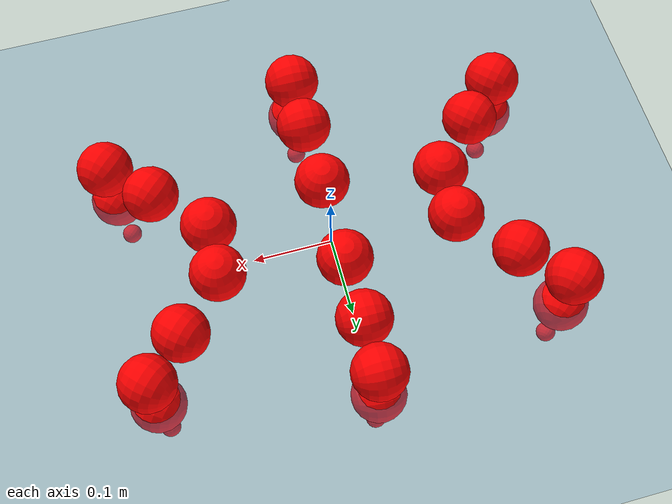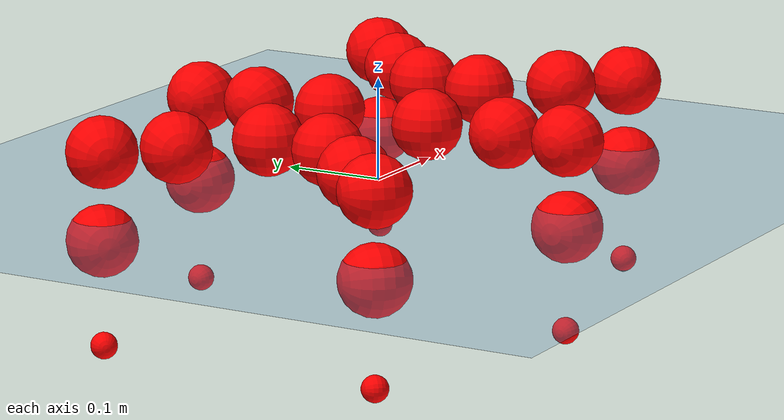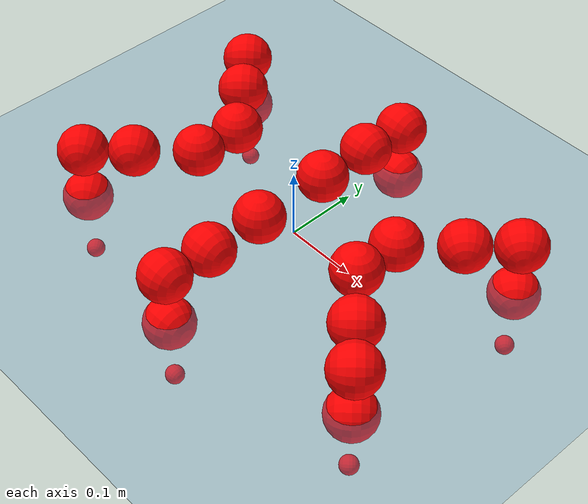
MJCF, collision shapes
<mujoco model="Golem">
  <compiler angle="radian" assetdir="assets" balanceinertia="true" inertiafromgeom="false"/>

  <option timestep="0.005" density="1.2" viscosity="2e-05"/>

  <size nkey="1"/>

  <visual>
    <quality shadowsize="8192"/>
    <map shadowclip="0.5"/>
  </visual>

  <default>
    <default class="/">
      <joint armature="0.01" damping="0.01" frictionloss="0.01"/>
      <geom contype="0" conaffinity="0" group="1" solref="-1000 -80"/>
      <site size="0.01 0.005 0.005" group="5"/>
      <general forcelimited="true" biastype="affine" gainprm="25" biasprm="0 -25 -0.5"/>
      <default class="visual">
        <geom type="mesh" group="2"/>
      </default>
      <default class="collision">
        <geom group="3"/>
      </default>
      <default class="foot">
        <geom size="0.01 0 0" condim="6" group="4" priority="1" solimp="0.015 1 0.01"/>
      </default>
      <default class="reward_collision_sphere">
        <geom group="5" rgba="1 0 0 1"/>
      </default>
    </default>
  </default>

  <asset>
    <texture type="skybox" colorspace="auto" name="//unnamed_texture_0" builtin="gradient" rgb1="0.95 0.95 0.95" rgb2="0.95 0.95 0.95" width="100" height="600"/>
    <texture type="2d" colorspace="auto" name="texplane" builtin="checker" rgb1="0.345 0.575 0.748" rgb2="0.345 0.575 0.748" markrgb="1 1 1" width="512" height="512"/>
    <material name="MatPlane" class="/" texture="texplane" texuniform="true" texrepeat="2 2" specular="0.9"/>
    <mesh name="body" class="/" file="body.stl" scale="0.001 0.001 0.001"/>
    <mesh name="coxa" class="/" file="coxa.stl" scale="0.001 0.001 0.001"/>
    <mesh name="femur" class="/" file="femur.stl" scale="0.001 0.001 0.001"/>
    <mesh name="tibia" class="/" file="tibia.stl" scale="0.001 0.001 0.001"/>
    <mesh name="tarsus" class="/" file="tarsus.stl" scale="0.001 0.001 0.001"/>
  </asset>

  <worldbody>
    <geom name="floor" class="/" size="100 100 0.125" type="plane" group="0" material="MatPlane"/>
    <light name="toplight_shadow" class="/" pos="0 0 5" dir="0.0990148 0.0990148 -0.990148" type="directional" ambient="0.04 0.04 0.04" diffuse="0.55 0.55 0.55" specular="0.12 0.12 0.12"/>
    <light name="toplight_fill" class="/" pos="0 0 5" dir="0.0990148 0.0990148 -0.990148" type="directional" castshadow="false" ambient="0.04 0.04 0.04" diffuse="0.3 0.3 0.3" specular="0.08 0.08 0.08"/>
    <body name="trunk" pos="-0.00121571 -0.000334514 0.000524906" quat="0.999999 -0.000295923 0.00106384 -0.000404972">
      <inertial pos="0.000923575 0.00227553 -0.000720273" quat="1 0.00012176 0.00015216 0.000418635" mass="2.31095" diaginertia="0.00733743 0.00106471 0.00951881"/>
      <joint name="//unnamed_joint_0" type="free"/>
      <geom name="//unnamed_geom_1" class="/" pos="0 0 0.0638338" quat="1 0 0 0" type="mesh" rgba="0.9 0.9 0.9 1" mesh="body"/>
      <site name="imu" class="/" pos="0.123886 0.00911301 0.100873" size="0.00861616"/>
      <camera name="track" class="/" pos="0 -1.28052 0" quat="0.707107 0.707107 0 0" mode="trackcom"/>
      <camera name="ego_camera" class="/" pos="0.123134 0 0.0997402" quat="-0.5 -0.5 0.5 0.5"/>
      <body name="coxa_RR" pos="-0.168753 -0.0518513 0.0638521" quat="0.382661 -0.000654443 -0.000821933 -0.923888">
        <inertial pos="0.00056478 -0.000477473 -0.000257671" quat="0.999921 -0.00502903 -0.00567746 0.0100373" mass="0.135456" diaginertia="0.00781048 0.00109231 0.0102719"/>
        <joint name="coxa_joint_RR" class="/" pos="0 0 0" axis="0.00277817 0.00121821 -0.999995" range="-3.13674 3.08854" armature="0.00968588" damping="0.00906366" frictionloss="0.00862207"/>
        <geom name="//unnamed_geom_2" class="/" type="mesh" rgba="0.2 0.2 0.2 1" mesh="coxa"/>
        <geom name="//unnamed_geom_3" class="reward_collision_sphere" size="0.0344646" pos="-0.0284155 0 0"/>
        <body name="femur_RR" pos="0.0568447 0.00235565 -0.00170387" quat="0.499819 -0.500315 0.49979 0.500076">
          <inertial pos="0.00221003 -0.0008036 0.00021303" quat="0.999944 -0.0072771 0.00735636 0.00227598" mass="0.12985" diaginertia="0.00767341 0.00108603 0.00990159"/>
          <joint name="femur_joint_RR" class="/" pos="0 0 0" axis="-0.00184452 0.000249082 -0.999998" stiffness="0.0018426" range="-3.13534 3.12803" armature="0.00873027" damping="0.00581699" frictionloss="0.00832037"/>
          <geom name="//unnamed_geom_4" class="/" type="mesh" rgba="0.9 0.9 0.9 1" mesh="femur"/>
          <geom name="//unnamed_geom_5" class="reward_collision_sphere" size="0.0344646"/>
          <body name="tibia_RR" pos="0.00107754 -0.0676234 0.000920464" quat="7.35822e-05 1 6.04395e-05 -7.77363e-05">
            <inertial pos="-0.00134411 0.000357433 0.000491393" quat="0.999995 -0.00165993 -0.00265379 0.000275771" mass="0.13155" diaginertia="0.00753081 0.00106577 0.0100197"/>
            <joint name="tibia_joint_RR" class="/" pos="0 0 0" axis="-9.81059e-05 0.0096356 0.999954" stiffness="0.000681932" range="-3.12416 3.13831" armature="0.00864148" damping="0.002317" frictionloss="0.00861032"/>
            <geom name="//unnamed_geom_6" class="/" type="mesh" rgba="0.2 0.2 0.2 1" mesh="tibia"/>
            <geom name="//unnamed_geom_7" class="reward_collision_sphere" size="0.0344646"/>
            <body name="tarsus_RR" pos="0.0820089 0.00210313 0.000145432" quat="1 2.5975e-06 2.4485e-05 -0.000143114">
              <inertial pos="0.0582931 0.000142098 0.000768244" quat="0.501341 0.500086 0.499333 0.499237" mass="0.131568" diaginertia="0.00789293 0.00109887 0.0102136"/>
              <joint name="tarsus_joint_RR" class="/" pos="0 0 0" axis="-0.00259318 0.00125623 0.999996" range="-3.13997 3.13856" armature="0.00861783" damping="0.0423487" frictionloss="0.00792877"/>
              <geom name="//unnamed_geom_8" class="/" type="mesh" rgba="0.9 0.9 0.9 1" mesh="tarsus"/>
              <geom name="foot_1" class="foot" size="0.00887927" pos="0.106085 0 0" quat="0 -0.707107 0 0.707107"/>
              <geom name="//unnamed_geom_10" class="reward_collision_sphere" size="0.0344646"/>
              <geom name="//unnamed_geom_11" class="reward_collision_sphere" size="0.0129242" pos="0.101822 0 0"/>
              <site name="foot_1" class="foot" pos="0.106085 0 0" quat="0 -0.707107 0 0.707107" size="0.00861616"/>
            </body>
          </body>
        </body>
      </body>
      <body name="coxa_RM" pos="-0.00256926 -0.0837064 0.0615377" quat="0.707278 -0.000479991 -3.32681e-05 -0.706935">
        <inertial pos="-0.00195838 0.000585401 0.00120446" quat="1 -1.73123e-05 -2.41426e-05 2.43183e-05" mass="0.131644" diaginertia="0.00787678 0.00110233 0.0101756"/>
        <joint name="coxa_joint_RM" class="/" pos="0 0 0" axis="0.00541584 -0.00109598 -0.999985" range="-3.10857 3.14179" armature="0.0091267" damping="0.0129152" frictionloss="0.00866072"/>
        <geom name="//unnamed_geom_12" class="/" type="mesh" rgba="0.2 0.2 0.2 1" mesh="coxa"/>
        <geom name="//unnamed_geom_13" class="reward_collision_sphere" size="0.0344646" pos="-0.0284155 0 0"/>
        <body name="femur_RM" pos="0.0548771 0.00188508 0.000903294" quat="0.5 -0.5 0.500002 0.499998">
          <inertial pos="0.00026976 -0.000394341 -0.000886865" quat="0.999925 0.00989235 0.000283503 -0.00722001" mass="0.123231" diaginertia="0.0074226 0.00104782 0.00966631"/>
          <joint name="femur_joint_RM" class="/" pos="0 0 0" axis="-0.000581998 -0.000626342 -1" range="-3.18963 3.15968" armature="0.0088394" damping="0.00844578" frictionloss="0.00863213"/>
          <geom name="//unnamed_geom_14" class="/" type="mesh" rgba="0.9 0.9 0.9 1" mesh="femur"/>
          <geom name="//unnamed_geom_15" class="reward_collision_sphere" size="0.0344646"/>
          <body name="tibia_RM" pos="-0.000757771 -0.0677108 -0.00171357" quat="-3.17799e-05 0.999999 0.00116991 -0.000278388">
            <inertial pos="-0.00115956 -0.000859167 0.00108408" quat="0.999975 -0.00358904 0.00606865 -0.000334252" mass="0.127123" diaginertia="0.00756149 0.00104252 0.00952014"/>
            <joint name="tibia_joint_RM" class="/" pos="0 0 0" axis="-0.000401183 -0.00221377 0.999997" range="-3.13744 3.14377" armature="0.00865342" damping="0" frictionloss="0.00904569"/>
            <geom name="//unnamed_geom_16" class="/" type="mesh" rgba="0.2 0.2 0.2 1" mesh="tibia"/>
            <geom name="//unnamed_geom_17" class="reward_collision_sphere" size="0.0344646"/>
            <body name="tarsus_RM" pos="0.0837228 0.000450991 -0.000810416" quat="0.999999 -0.000816562 0.000542824 -0.000361396">
              <inertial pos="0.0570916 0.00035867 0.000271491" quat="0.503119 0.497153 0.501467 0.498238" mass="0.126918" diaginertia="0.00763169 0.00106674 0.00983062"/>
              <joint name="tarsus_joint_RM" class="/" pos="0 0 0" axis="0.00331568 0.00903827 0.999954" range="-3.16025 3.18878" armature="0.00851779" damping="0.00705994" frictionloss="0.00754157"/>
              <geom name="//unnamed_geom_18" class="/" type="mesh" rgba="0.9 0.9 0.9 1" mesh="tarsus"/>
              <geom name="foot_2" class="foot" size="0.00826396" pos="0.106085 0 0" quat="0 -0.707107 0 0.707107"/>
              <geom name="//unnamed_geom_20" class="reward_collision_sphere" size="0.0344646"/>
              <geom name="//unnamed_geom_21" class="reward_collision_sphere" size="0.0129242" pos="0.101822 0 0"/>
              <site name="foot_2" class="foot" pos="0.106085 0 0" quat="0 -0.707107 0 0.707107" size="0.00861616"/>
            </body>
          </body>
        </body>
      </body>
      <body name="coxa_RF" pos="0.166327 -0.0514044 0.064349" quat="0.924157 0.000654171 7.56126e-05 -0.382011">
        <inertial pos="0.00238593 0.00230777 8.70509e-05" quat="0.999999 0.000479835 -0.00120858 0.000471949" mass="0.12744" diaginertia="0.0077117 0.00106862 0.00986709"/>
        <joint name="coxa_joint_RF" class="/" pos="0 0 0" axis="0.00128227 0.000304341 -0.999999" range="-3.14648 3.09246" armature="0.009005" damping="0.0163498" frictionloss="0.00864676"/>
        <geom name="//unnamed_geom_22" class="/" type="mesh" rgba="0.2 0.2 0.2 1" mesh="coxa"/>
        <geom name="//unnamed_geom_23" class="reward_collision_sphere" size="0.0344646" pos="-0.0284155 0 0"/>
        <body name="femur_RF" pos="0.0560949 -0.000618689 4.25995e-05" quat="0.500313 -0.500458 0.499252 0.499976">
          <inertial pos="-0.000223872 -0.00054222 0.00255296" quat="0.999955 -0.00198295 -0.00550467 -0.00746255" mass="0.12508" diaginertia="0.00737387 0.00104224 0.00929768"/>
          <joint name="femur_joint_RF" class="/" pos="0 0 0" axis="0.00933391 0.00824119 -0.999922" range="-3.14698 3.13459" armature="0.00977919" damping="0.00817047" frictionloss="0.00922382"/>
          <geom name="//unnamed_geom_24" class="/" type="mesh" rgba="0.9 0.9 0.9 1" mesh="femur"/>
          <geom name="//unnamed_geom_25" class="reward_collision_sphere" size="0.0344646"/>
          <body name="tibia_RF" pos="-6.01919e-05 -0.0686858 -0.00104688" quat="-7.07504e-05 1 8.16891e-05 -6.58541e-05">
            <inertial pos="-9.94632e-05 0.000320598 0.000201979" quat="0.99997 0.00474284 -0.000227998 -0.00610474" mass="0.12651" diaginertia="0.00744689 0.00105403 0.00998557"/>
            <joint name="tibia_joint_RF" class="/" pos="0 0 0" axis="-0.0024922 0.000935362 0.999996" range="-3.13624 3.18416" armature="0.00864116" damping="0.00643266" frictionloss="0.00820611"/>
            <geom name="//unnamed_geom_26" class="/" type="mesh" rgba="0.2 0.2 0.2 1" mesh="tibia"/>
            <geom name="//unnamed_geom_27" class="reward_collision_sphere" size="0.0344646"/>
            <body name="tarsus_RF" pos="0.0818901 -0.000711194 0.00132796" quat="0.999999 -0.000360517 0.00112371 -0.000177173">
              <inertial pos="0.056963 7.93146e-05 0.000250105" quat="0.497277 0.499852 0.502217 0.500641" mass="0.127409" diaginertia="0.00754406 0.00106164 0.00955384"/>
              <joint name="tarsus_joint_RF" class="/" pos="0 0 0" axis="0.00626028 -0.00425216 0.999971" range="-3.13718 3.12766" armature="0.00858827" damping="0.0121117" frictionloss="0.00883066"/>
              <geom name="//unnamed_geom_28" class="/" type="mesh" rgba="0.9 0.9 0.9 1" mesh="tarsus"/>
              <geom name="foot_3" class="foot" size="0.00912402" pos="0.106085 0 0" quat="0 -0.707107 0 0.707107"/>
              <geom name="//unnamed_geom_30" class="reward_collision_sphere" size="0.0344646"/>
              <geom name="//unnamed_geom_31" class="reward_collision_sphere" size="0.0129242" pos="0.101822 0 0"/>
              <site name="foot_3" class="foot" pos="0.106085 0 0" quat="0 -0.707107 0 0.707107" size="0.00861616"/>
            </body>
          </body>
        </body>
      </body>
      <body name="coxa_LR" pos="-0.167346 0.054207 0.06532" quat="0.383418 -0.000527783 0.000212525 0.923575">
        <inertial pos="0.000571962 -0.000567655 -0.000582359" quat="1 -0.000293665 -0.00018884 0.000111852" mass="0.128844" diaginertia="0.00745648 0.00107705 0.00958515"/>
        <joint name="coxa_joint_LR" class="/" pos="0 0 0" axis="0.0125674 -0.0054039 -0.999906" range="-3.10399 3.14138" armature="0.00877834" damping="0.00558305" frictionloss="0.00854154"/>
        <geom name="//unnamed_geom_32" class="/" type="mesh" rgba="0.2 0.2 0.2 1" mesh="coxa"/>
        <geom name="//unnamed_geom_33" class="reward_collision_sphere" size="0.0344646" pos="-0.0284155 0 0"/>
        <body name="femur_LR" pos="0.0593538 -0.00181173 -0.00225095" quat="0.500205 -0.500168 0.499931 0.499695">
          <inertial pos="-0.000718672 -0.000127929 -0.000479328" quat="0.999994 -0.00273592 -0.000386094 -0.00202078" mass="0.126596" diaginertia="0.00761667 0.0010758 0.00993856"/>
          <joint name="femur_joint_LR" class="/" pos="0 0 0" axis="-0.00519399 -0.00200971 0.999984" range="-3.18343 3.18093" armature="0.00865824" damping="0" frictionloss="0.00906161"/>
          <geom name="//unnamed_geom_34" class="/" type="mesh" rgba="0.9 0.9 0.9 1" mesh="femur"/>
          <geom name="//unnamed_geom_35" class="reward_collision_sphere" size="0.0344646"/>
          <body name="tibia_LR" pos="0.000532851 -0.0702985 -0.00164261" quat="0.000403251 1 -0.000253625 0.00017783">
            <inertial pos="-0.00269709 0.00115084 -0.00210352" quat="0.999999 -0.000531671 -0.000864587 6.15498e-05" mass="0.127796" diaginertia="0.00762556 0.00110488 0.00979543"/>
            <joint name="tibia_joint_LR" class="/" pos="0 0 0" axis="0.00183182 0.000837579 -0.999998" range="-3.09485 3.16941" armature="0.00866974" damping="0.00205179" frictionloss="0.00899629"/>
            <geom name="//unnamed_geom_36" class="/" type="mesh" rgba="0.2 0.2 0.2 1" mesh="tibia"/>
            <geom name="//unnamed_geom_37" class="reward_collision_sphere" size="0.0344646"/>
            <body name="tarsus_LR" pos="0.0850241 0.000882088 0.000199656" quat="1 -9.24309e-05 2.08127e-05 -0.000176141">
              <inertial pos="0.0571314 -0.000324045 -0.000880397" quat="0.501908 0.498984 0.498635 0.500466" mass="0.131931" diaginertia="0.00780634 0.0011159 0.0101161"/>
              <joint name="tarsus_joint_LR" class="/" pos="0 0 0" axis="-0.012552 -0.00267712 -0.999918" stiffness="0.00210242" range="-3.13319 3.11143" armature="0.00882991" damping="0.0264533" frictionloss="0.00923673"/>
              <geom name="//unnamed_geom_38" class="/" type="mesh" rgba="0.9 0.9 0.9 1" mesh="tarsus"/>
              <geom name="foot_4" class="foot" size="0.00823996" pos="0.106085 0 0" quat="0.707107 0 -0.707107 0"/>
              <geom name="//unnamed_geom_40" class="reward_collision_sphere" size="0.0344646"/>
              <geom name="//unnamed_geom_41" class="reward_collision_sphere" size="0.0129242" pos="0.101822 0 0"/>
              <site name="foot_4" class="foot" pos="0.106085 0 0" quat="0.707107 0 -0.707107 0" size="0.00861616"/>
            </body>
          </body>
        </body>
      </body>
      <body name="coxa_LM" pos="-0.00170958 0.0817687 0.0636272" quat="0.70712 0.000123708 6.14615e-06 0.707094">
        <inertial pos="0.00259746 0.0023886 -0.000258173" quat="1 -0.000372153 2.83216e-05 1.12267e-05" mass="0.127457" diaginertia="0.00750412 0.0010733 0.00981638"/>
        <joint name="coxa_joint_LM" class="/" pos="0 0 0" axis="-0.00194113 -0.00263465 -0.999995" range="-3.12832 3.12788" armature="0.00941731" damping="0.00580637" frictionloss="0.0087804"/>
        <geom name="//unnamed_geom_42" class="/" type="mesh" rgba="0.2 0.2 0.2 1" mesh="coxa"/>
        <geom name="//unnamed_geom_43" class="reward_collision_sphere" size="0.0344646" pos="-0.0284155 0 0"/>
        <body name="femur_LM" pos="0.0513021 0.00111337 -0.00107783" quat="0.499911 -0.501056 0.499783 0.499248">
          <inertial pos="-0.000930107 0.000183862 0.000615553" quat="0.999972 -0.00295714 0.0051454 -0.00458048" mass="0.126175" diaginertia="0.0076655 0.00105006 0.00962819"/>
          <joint name="femur_joint_LM" class="/" pos="0 0 0" axis="-0.000935965 0.00199218 0.999998" range="-3.15457 3.14057" armature="0.00757157" damping="0" frictionloss="0.00884121"/>
          <geom name="//unnamed_geom_44" class="/" type="mesh" rgba="0.9 0.9 0.9 1" mesh="femur"/>
          <geom name="//unnamed_geom_45" class="reward_collision_sphere" size="0.0344646"/>
          <body name="tibia_LM" pos="0.00235395 -0.0667624 -0.000892332" quat="5.52377e-05 1 -3.54107e-05 4.67043e-06">
            <inertial pos="-0.00127815 -0.000594044 -9.80273e-05" quat="0.999989 -0.004012 0.00203051 -0.00143224" mass="0.124555" diaginertia="0.00752821 0.00108808 0.0100258"/>
            <joint name="tibia_joint_LM" class="/" pos="0 0 0" axis="0.00418614 -0.000761458 -0.999991" stiffness="0.000684572" range="-3.12206 3.16445" armature="0.00864634" damping="0" frictionloss="0.00839504"/>
            <geom name="//unnamed_geom_46" class="/" type="mesh" rgba="0.2 0.2 0.2 1" mesh="tibia"/>
            <geom name="//unnamed_geom_47" class="reward_collision_sphere" size="0.0344646"/>
            <body name="tarsus_LM" pos="0.0839197 0.00159676 -0.00162091" quat="1 6.79606e-05 5.06428e-05 -1.57334e-05">
              <inertial pos="0.0583931 -0.000373933 -0.000104292" quat="0.499788 0.500272 0.500004 0.499936" mass="0.135297" diaginertia="0.00779305 0.00110716 0.00987549"/>
              <joint name="tarsus_joint_LM" class="/" pos="0 0 0" axis="0.000505 -0.00407478 -0.999992" stiffness="0.0084948" range="-3.13809 3.1201" armature="0.00863126" damping="0.0174197" frictionloss="0.00864241"/>
              <geom name="//unnamed_geom_48" class="/" type="mesh" rgba="0.9 0.9 0.9 1" mesh="tarsus"/>
              <geom name="foot_5" class="foot" size="0.00839369" pos="0.106085 0 0" quat="0.707107 0 -0.707107 0"/>
              <geom name="//unnamed_geom_50" class="reward_collision_sphere" size="0.0344646"/>
              <geom name="//unnamed_geom_51" class="reward_collision_sphere" size="0.0129242" pos="0.101822 0 0"/>
              <site name="foot_5" class="foot" pos="0.106085 0 0" quat="0.707107 0 -0.707107 0" size="0.00861616"/>
            </body>
          </body>
        </body>
      </body>
      <body name="coxa_LF" pos="0.168978 0.0533012 0.0648286" quat="0.923896 8.68676e-05 -0.000140403 0.382643">
        <inertial pos="5.32266e-06 -0.000922568 0.000275408" quat="1 -7.38532e-05 5.2872e-05 6.06156e-05" mass="0.125042" diaginertia="0.00751368 0.00107802 0.00990111"/>
        <joint name="coxa_joint_LF" class="/" pos="0 0 0" axis="-0.00649219 0.00314797 -0.999974" range="-3.13059 3.1472" armature="0.00829559" damping="0.00626399" frictionloss="0.00868619"/>
        <geom name="//unnamed_geom_52" class="/" type="mesh" rgba="0.2 0.2 0.2 1" mesh="coxa"/>
        <geom name="//unnamed_geom_53" class="reward_collision_sphere" size="0.0344646" pos="-0.0284155 0 0"/>
        <body name="femur_LF" pos="0.0561666 0.00286979 -0.00251968" quat="0.499805 -0.500492 0.499904 0.499799">
          <inertial pos="-0.00197082 -0.00056013 0.000978998" quat="0.999999 -4.04437e-05 -0.000726138 -0.00122886" mass="0.129103" diaginertia="0.00752089 0.00105125 0.00976076"/>
          <joint name="femur_joint_LF" class="/" pos="0 0 0" axis="-0.00892389 -0.00665527 0.999938" range="-3.1407 3.09602" armature="0.00793437" damping="0.00259573" frictionloss="0.00826029"/>
          <geom name="//unnamed_geom_54" class="/" type="mesh" rgba="0.9 0.9 0.9 1" mesh="femur"/>
          <geom name="//unnamed_geom_55" class="reward_collision_sphere" size="0.0344646"/>
          <body name="tibia_LF" pos="-0.00201074 -0.0692034 0.00103968" quat="-0.000300797 1 -0.00018559 -0.000128374">
            <inertial pos="-0.00103346 -6.62324e-05 -0.000267453" quat="0.999939 0.000926327 0.0101631 0.00412765" mass="0.125803" diaginertia="0.00759316 0.00106493 0.00979411"/>
            <joint name="tibia_joint_LF" class="/" pos="0 0 0" axis="0.000230163 -0.00408716 -0.999992" range="-3.13893 3.13782" armature="0.00752243" damping="0" frictionloss="0.00854991"/>
            <geom name="//unnamed_geom_56" class="/" type="mesh" rgba="0.2 0.2 0.2 1" mesh="tibia"/>
            <geom name="//unnamed_geom_57" class="reward_collision_sphere" size="0.0344646"/>
            <body name="tarsus_LF" pos="0.0837373 -0.00030687 0.00048529" quat="0.999999 0.00125053 8.91985e-05 0.000206178">
              <inertial pos="0.058671 -0.00170541 0.000504188" quat="0.502131 0.498667 0.499774 0.499422" mass="0.126394" diaginertia="0.00757785 0.00105717 0.00974714"/>
              <joint name="tarsus_joint_LF" class="/" pos="0 0 0" axis="-0.0107433 -0.00204106 -0.99994" stiffness="0.00222369" range="-3.10081 3.14126" armature="0.00877679" damping="0.0196149" frictionloss="0.00856943"/>
              <geom name="//unnamed_geom_58" class="/" type="mesh" rgba="0.9 0.9 0.9 1" mesh="tarsus"/>
              <geom name="foot_6" class="foot" size="0.00799858" pos="0.106085 0 0" quat="0.707107 0 -0.707107 0"/>
              <geom name="//unnamed_geom_60" class="reward_collision_sphere" size="0.0344646"/>
              <geom name="//unnamed_geom_61" class="reward_collision_sphere" size="0.0129242" pos="0.101822 0 0"/>
              <site name="foot_6" class="foot" pos="0.106085 0 0" quat="0.707107 0 -0.707107 0" size="0.00861616"/>
            </body>
          </body>
        </body>
      </body>
    </body>
  </worldbody>

  <contact>
    <pair class="/" geom1="floor" geom2="foot_1" name="//unnamed_contact_0"/>
    <pair class="/" geom1="floor" geom2="foot_2" name="//unnamed_contact_1"/>
    <pair class="/" geom1="floor" geom2="foot_3" name="//unnamed_contact_2"/>
    <pair class="/" geom1="floor" geom2="foot_4" name="//unnamed_contact_3"/>
    <pair class="/" geom1="floor" geom2="foot_5" name="//unnamed_contact_4"/>
    <pair class="/" geom1="floor" geom2="foot_6" name="//unnamed_contact_5"/>
  </contact>

  <actuator>
    <general name="coxa_joint_RR" class="/" joint="coxa_joint_RR" forcerange="-6.38093 6.38093" gainprm="20.7542" biasprm="0 -20.7542 -0.437291"/>
    <general name="femur_joint_RR" class="/" joint="femur_joint_RR" forcerange="-6.28063 6.28063" gainprm="20.7542" biasprm="0 -20.7542 -0.437291"/>
    <general name="tibia_joint_RR" class="/" joint="tibia_joint_RR" forcerange="-6.39712 6.39712" gainprm="20.7542" biasprm="0 -20.7542 -0.437291"/>
    <general name="tarsus_joint_RR" class="/" joint="tarsus_joint_RR" forcerange="-6.53076 6.53076" gainprm="20.7542" biasprm="0 -20.7542 -0.437291"/>
    <general name="coxa_joint_RM" class="/" joint="coxa_joint_RM" forcerange="-6.53345 6.53345" gainprm="20.7542" biasprm="0 -20.7542 -0.437291"/>
    <general name="femur_joint_RM" class="/" joint="femur_joint_RM" forcerange="-5.9329 5.9329" gainprm="20.7542" biasprm="0 -20.7542 -0.437291"/>
    <general name="tibia_joint_RM" class="/" joint="tibia_joint_RM" forcerange="-6.30045 6.30045" gainprm="20.7542" biasprm="0 -20.7542 -0.437291"/>
    <general name="tarsus_joint_RM" class="/" joint="tarsus_joint_RM" forcerange="-6.0712 6.0712" gainprm="20.7542" biasprm="0 -20.7542 -0.437291"/>
    <general name="coxa_joint_RF" class="/" joint="coxa_joint_RF" forcerange="-5.87742 5.87742" gainprm="20.7542" biasprm="0 -20.7542 -0.437291"/>
    <general name="femur_joint_RF" class="/" joint="femur_joint_RF" forcerange="-5.98438 5.98438" gainprm="20.7542" biasprm="0 -20.7542 -0.437291"/>
    <general name="tibia_joint_RF" class="/" joint="tibia_joint_RF" forcerange="-6.5505 6.5505" gainprm="20.7542" biasprm="0 -20.7542 -0.437291"/>
    <general name="tarsus_joint_RF" class="/" joint="tarsus_joint_RF" forcerange="-6.15472 6.15472" gainprm="20.7542" biasprm="0 -20.7542 -0.437291"/>
    <general name="coxa_joint_LR" class="/" joint="coxa_joint_LR" forcerange="-6.23916 6.23916" gainprm="20.7542" biasprm="0 -20.7542 -0.437291"/>
    <general name="femur_joint_LR" class="/" joint="femur_joint_LR" forcerange="-6.28582 6.28582" gainprm="20.7542" biasprm="0 -20.7542 -0.437291"/>
    <general name="tibia_joint_LR" class="/" joint="tibia_joint_LR" forcerange="-5.74474 5.74474" gainprm="20.7542" biasprm="0 -20.7542 -0.437291"/>
    <general name="tarsus_joint_LR" class="/" joint="tarsus_joint_LR" forcerange="-6.86442 6.86442" gainprm="20.7542" biasprm="0 -20.7542 -0.437291"/>
    <general name="coxa_joint_LM" class="/" joint="coxa_joint_LM" forcerange="-6.25026 6.25026" gainprm="20.7542" biasprm="0 -20.7542 -0.437291"/>
    <general name="femur_joint_LM" class="/" joint="femur_joint_LM" forcerange="-6.22135 6.22135" gainprm="20.7542" biasprm="0 -20.7542 -0.437291"/>
    <general name="tibia_joint_LM" class="/" joint="tibia_joint_LM" forcerange="-6.25013 6.25013" gainprm="20.7542" biasprm="0 -20.7542 -0.437291"/>
    <general name="tarsus_joint_LM" class="/" joint="tarsus_joint_LM" forcerange="-6.46201 6.46201" gainprm="20.7542" biasprm="0 -20.7542 -0.437291"/>
    <general name="coxa_joint_LF" class="/" joint="coxa_joint_LF" forcerange="-6.23774 6.23774" gainprm="20.7542" biasprm="0 -20.7542 -0.437291"/>
    <general name="femur_joint_LF" class="/" joint="femur_joint_LF" forcerange="-6.30026 6.30026" gainprm="20.7542" biasprm="0 -20.7542 -0.437291"/>
    <general name="tibia_joint_LF" class="/" joint="tibia_joint_LF" forcerange="-6.06909 6.06909" gainprm="20.7542" biasprm="0 -20.7542 -0.437291"/>
    <general name="tarsus_joint_LF" class="/" joint="tarsus_joint_LF" forcerange="-6.19765 6.19765" gainprm="20.7542" biasprm="0 -20.7542 -0.437291"/>
  </actuator>

  <sensor>
    <gyro site="imu" name="imu_angular_velocity"/>
    <velocimeter site="imu" name="imu_linear_velocity"/>
    <framelinvel objtype="site" objname="foot_1" name="foot_1_global_linear_velocity"/>
    <framelinvel objtype="site" objname="foot_2" name="foot_2_global_linear_velocity"/>
    <framelinvel objtype="site" objname="foot_3" name="foot_3_global_linear_velocity"/>
    <framelinvel objtype="site" objname="foot_4" name="foot_4_global_linear_velocity"/>
    <framelinvel objtype="site" objname="foot_5" name="foot_5_global_linear_velocity"/>
    <framelinvel objtype="site" objname="foot_6" name="foot_6_global_linear_velocity"/>
  </sensor>

  <keyframe>
    <key name="home" qpos="0 0 0.1457 1 0 0 0 0 0 0 0 0 0 0 0 0 0 0 0 0 0 0 0 0 0 0 0 0 0 0 0"/>
  </keyframe>
</mujoco>
